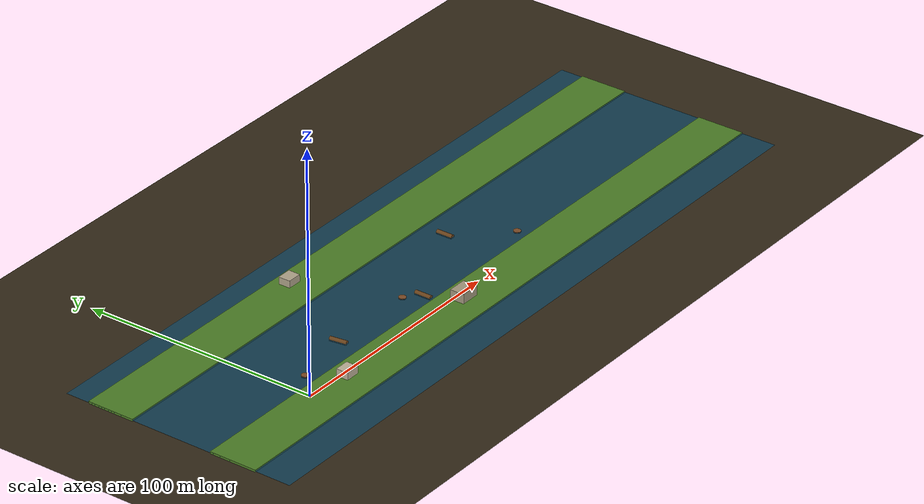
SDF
<?xml version="1.0" ?>
<sdf version="1.8">
  <world name="madeira_river_simple">

    <!-- Plugins obrigatórios do Gazebo Harmonic                      -->
    <plugin filename="gz-sim-physics-system"
            name="gz::sim::systems::Physics" />
    <plugin filename="gz-sim-user-commands-system"
            name="gz::sim::systems::UserCommands" />
    <plugin filename="gz-sim-scene-broadcaster-system"
            name="gz::sim::systems::SceneBroadcaster" />

    <!-- Plugins de Sensores (Necessarios para o ArduPilot) -->
    <plugin filename="gz-sim-sensors-system"
            name="gz::sim::systems::Sensors">
      <render_engine>ogre2</render_engine>
    </plugin>
    <plugin filename="gz-sim-imu-system"
            name="gz::sim::systems::Imu" />
    <plugin filename="gz-sim-navsat-system"
            name="gz::sim::systems::NavSat" />
    <plugin filename="gz-sim-magnetometer-system"
            name="gz::sim::systems::Magnetometer" />

    <plugin filename="gz-sim-buoyancy-system"
            name="gz::sim::systems::Buoyancy">
      <graded_buoyancy>
        <default_density>1000</default_density>
        <density_change>
          <above_depth>0</above_depth>
          <density>0</density>
        </density_change>
      </graded_buoyancy>
      <surface>0 0 1 0</surface>
    </plugin>

    <!-- Física (DART — padrão do Harmonic)                           -->
    <physics name="1ms" type="ignored">
      <max_step_size>0.001</max_step_size>
      <real_time_factor>1.0</real_time_factor>
    </physics>

    <!-- Iluminação                                                   -->
    <light type="directional" name="sun">
      <cast_shadows>true</cast_shadows>
      <pose>0 0 10 0 0 0</pose>
      <diffuse>0.9 0.85 0.75 1</diffuse>
      <specular>0.3 0.3 0.3 1</specular>
      <attenuation>
        <range>1000</range>
        <constant>0.9</constant>
        <linear>0.01</linear>
        <quadratic>0.001</quadratic>
      </attenuation>
      <direction>-0.5 0.1 -0.9</direction>
    </light>

    <!-- Cena                                                         -->
    <scene>
      <ambient>0.5 0.5 0.45 1</ambient>
      <background>0.55 0.75 0.95 1</background>
      <shadows>true</shadows>
      <grid>false</grid>
    </scene>

    <!-- Coordenadas esféricas — Rio Madeira (mesmas do ROS1)         -->
    <spherical_coordinates>
      <surface_model>EARTH_WGS84</surface_model>
      <latitude_deg>-21.7784</latitude_deg>
      <longitude_deg>-43.3697</longitude_deg>
      <elevation>90</elevation>
      <heading_deg>0</heading_deg>
    </spherical_coordinates>

    <!-- Leito do rio (ground plane)                                  -->
    <!-- Escuro, representando o fundo do rio                         -->
    <model name="river_bed">
      <static>true</static>
      <link name="link">
        <collision name="collision">
          <geometry>
            <plane>
              <normal>0 0 1</normal>
              <size>300 100</size>
            </plane>
          </geometry>
        </collision>
        <visual name="visual">
          <geometry>
            <plane>
              <normal>0 0 1</normal>
              <size>300 100</size>
            </plane>
          </geometry>
          <material>
            <ambient>0.15 0.12 0.08 1</ambient>
            <diffuse>0.2 0.16 0.1 1</diffuse>
            <specular>0.05 0.05 0.05 1</specular>
          </material>
        </visual>
      </link>
      <pose>100 20 -0.1 0 0 0</pose>
    </model>

    <!-- Superfície da água                                           -->
    <!-- Plano semi-transparente na z=0 representando o rio           -->
    <model name="water_surface">
      <static>true</static>
      <link name="link">
        <visual name="visual">
          <geometry>
            <plane>
              <normal>0 0 1</normal>
              <size>300 100</size>
            </plane>
          </geometry>
          <material>
            <ambient>0.05 0.15 0.2 1</ambient>
            <diffuse>0.1 0.3 0.4 0.85</diffuse>
            <specular>0.4 0.4 0.4 1</specular>
          </material>
        </visual>
      </link>
      <pose>100 20 0.0 0 0 0</pose>
    </model>

    <!-- Margem esquerda do rio                                       -->
    <model name="left_bank">
      <static>true</static>
      <link name="link">
        <collision name="collision">
          <geometry>
            <box><size>300 20 2</size></box>
          </geometry>
        </collision>
        <visual name="visual">
          <geometry>
            <box><size>300 20 2</size></box>
          </geometry>
          <material>
            <ambient>0.2 0.35 0.1 1</ambient>
            <diffuse>0.3 0.5 0.15 1</diffuse>
            <specular>0.1 0.1 0.1 1</specular>
          </material>
        </visual>
      </link>
      <pose>100 -5 -0.5 0 0 0</pose>
    </model>

    <!-- Margem direita do rio                                        -->
    <model name="right_bank">
      <static>true</static>
      <link name="link">
        <collision name="collision">
          <geometry>
            <box><size>300 20 2</size></box>
          </geometry>
        </collision>
        <visual name="visual">
          <geometry>
            <box><size>300 20 2</size></box>
          </geometry>
          <material>
            <ambient>0.2 0.35 0.1 1</ambient>
            <diffuse>0.3 0.5 0.15 1</diffuse>
            <specular>0.1 0.1 0.1 1</specular>
          </material>
        </visual>
      </link>
      <pose>100 50 -0.5 0 0 0</pose>
    </model>

    <!-- Bóias / Galhos flutuantes (branche1_buoy)                    -->
    <!-- Cilindros pequenos representando detritos no rio              -->
    <model name="buoy_1">
      <static>true</static>
      <link name="link">
        <collision name="collision">
          <geometry>
            <cylinder><radius>1.5</radius><length>0.5</length></cylinder>
          </geometry>
        </collision>
        <visual name="visual">
          <geometry>
            <cylinder><radius>1.5</radius><length>0.5</length></cylinder>
          </geometry>
          <material>
            <ambient>0.35 0.2 0.1 1</ambient>
            <diffuse>0.5 0.3 0.15 1</diffuse>
          </material>
        </visual>
      </link>
      <pose>10 10 0.1 0 0 0</pose>
    </model>

    <model name="buoy_2">
      <static>true</static>
      <link name="link">
        <collision name="collision">
          <geometry>
            <cylinder><radius>1.5</radius><length>0.5</length></cylinder>
          </geometry>
        </collision>
        <visual name="visual">
          <geometry>
            <cylinder><radius>1.5</radius><length>0.5</length></cylinder>
          </geometry>
          <material>
            <ambient>0.35 0.2 0.1 1</ambient>
            <diffuse>0.5 0.3 0.15 1</diffuse>
          </material>
        </visual>
      </link>
      <pose>74 15 0.1 0 0 0</pose>
    </model>

    <model name="buoy_3">
      <static>true</static>
      <link name="link">
        <collision name="collision">
          <geometry>
            <cylinder><radius>1.5</radius><length>0.5</length></cylinder>
          </geometry>
        </collision>
        <visual name="visual">
          <geometry>
            <cylinder><radius>1.5</radius><length>0.5</length></cylinder>
          </geometry>
          <material>
            <ambient>0.35 0.2 0.1 1</ambient>
            <diffuse>0.5 0.3 0.15 1</diffuse>
          </material>
        </visual>
      </link>
      <pose>138 10 0.1 0 0 0</pose>
    </model>

    <!-- Troncos flutuantes (trunk2_buoy)                             -->
    <!-- Cilindros deitados representando troncos de árvore           -->
    <model name="trunk_1">
      <static>true</static>
      <link name="link">
        <collision name="collision">
          <pose>0 0 0 1.57 0 0</pose>
          <geometry>
            <cylinder><radius>1.0</radius><length>7.0</length></cylinder>
          </geometry>
        </collision>
        <visual name="visual">
          <pose>0 0 0 1.57 0 0</pose>
          <geometry>
            <cylinder><radius>1.0</radius><length>7.0</length></cylinder>
          </geometry>
          <material>
            <ambient>0.25 0.15 0.05 1</ambient>
            <diffuse>0.4 0.25 0.1 1</diffuse>
          </material>
        </visual>
      </link>
      <pose>36 15 0.0 0 0 -3</pose>
    </model>

    <model name="trunk_2">
      <static>true</static>
      <link name="link">
        <collision name="collision">
          <pose>0 0 0 1.57 0 0</pose>
          <geometry>
            <cylinder><radius>1.0</radius><length>7.0</length></cylinder>
          </geometry>
        </collision>
        <visual name="visual">
          <pose>0 0 0 1.57 0 0</pose>
          <geometry>
            <cylinder><radius>1.0</radius><length>7.0</length></cylinder>
          </geometry>
          <material>
            <ambient>0.25 0.15 0.05 1</ambient>
            <diffuse>0.4 0.25 0.1 1</diffuse>
          </material>
        </visual>
      </link>
      <pose>80 10 0.0 0 0 0</pose>
    </model>

    <model name="trunk_3">
      <static>true</static>
      <link name="link">
        <collision name="collision">
          <pose>0 0 0 1.57 0 0</pose>
          <geometry>
            <cylinder><radius>1.0</radius><length>7.0</length></cylinder>
          </geometry>
        </collision>
        <visual name="visual">
          <pose>0 0 0 1.57 0 0</pose>
          <geometry>
            <cylinder><radius>1.0</radius><length>7.0</length></cylinder>
          </geometry>
          <material>
            <ambient>0.25 0.15 0.05 1</ambient>
            <diffuse>0.4 0.25 0.1 1</diffuse>
          </material>
        </visual>
      </link>
      <pose>120 30 0.0 0 0 0</pose>
    </model>

    <!-- Casas na margem (house_1)                                    -->
    <!-- Boxes representando construções ribeirinhas                   -->
    <model name="house_1">
      <static>true</static>
      <link name="link">
        <collision name="collision">
          <geometry>
            <box><size>6 5 4</size></box>
          </geometry>
        </collision>
        <visual name="visual">
          <geometry>
            <box><size>6 5 4</size></box>
          </geometry>
          <material>
            <ambient>0.6 0.55 0.45 1</ambient>
            <diffuse>0.75 0.7 0.6 1</diffuse>
          </material>
        </visual>
      </link>
      <pose>19 -2 1.5 0 0 0</pose>
    </model>

    <model name="house_2">
      <static>true</static>
      <link name="link">
        <collision name="collision">
          <geometry>
            <box><size>6 5 4</size></box>
          </geometry>
        </collision>
        <visual name="visual">
          <geometry>
            <box><size>6 5 4</size></box>
          </geometry>
          <material>
            <ambient>0.55 0.5 0.4 1</ambient>
            <diffuse>0.7 0.65 0.55 1</diffuse>
          </material>
        </visual>
      </link>
      <pose>57 54 1.5 0 0 0</pose>
    </model>

    <model name="house_3">
      <static>true</static>
      <link name="link">
        <collision name="collision">
          <geometry>
            <box><size>8 6 5</size></box>
          </geometry>
        </collision>
        <visual name="visual">
          <geometry>
            <box><size>8 6 5</size></box>
          </geometry>
          <material>
            <ambient>0.5 0.45 0.35 1</ambient>
            <diffuse>0.65 0.6 0.5 1</diffuse>
          </material>
        </visual>
      </link>
      <pose>87 -3 2.0 0 0 0</pose>
    </model>

  </world>
</sdf>
